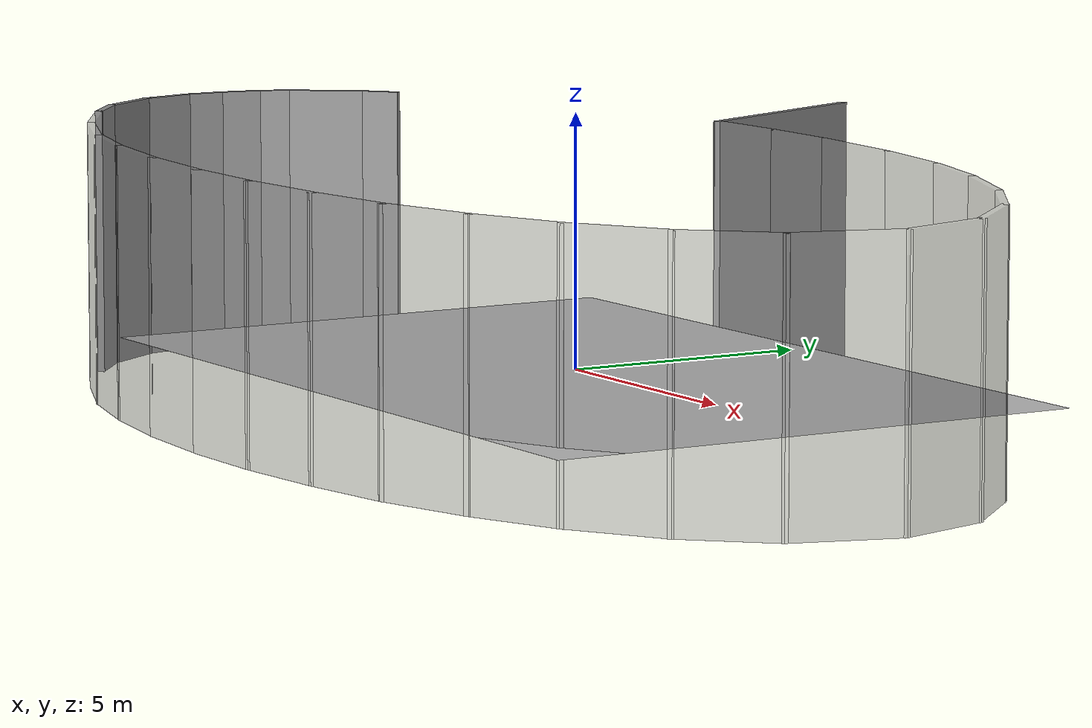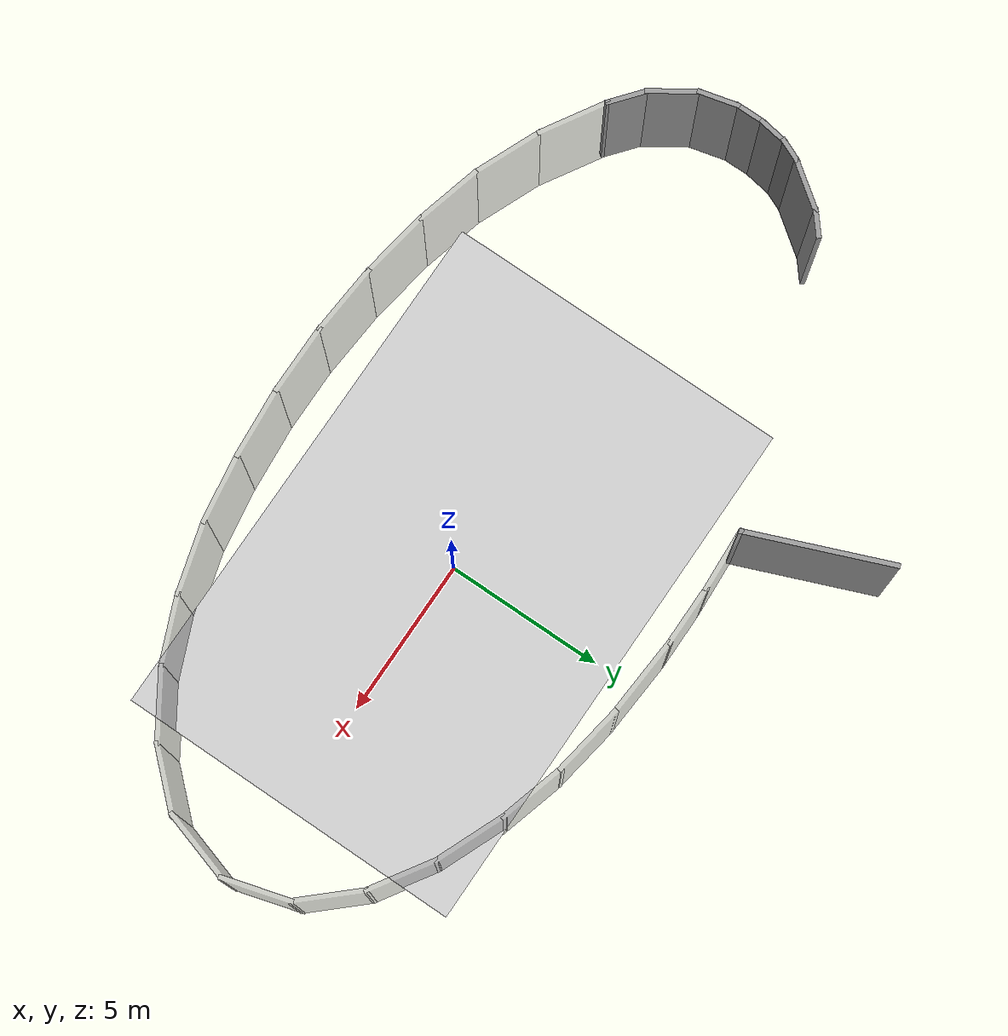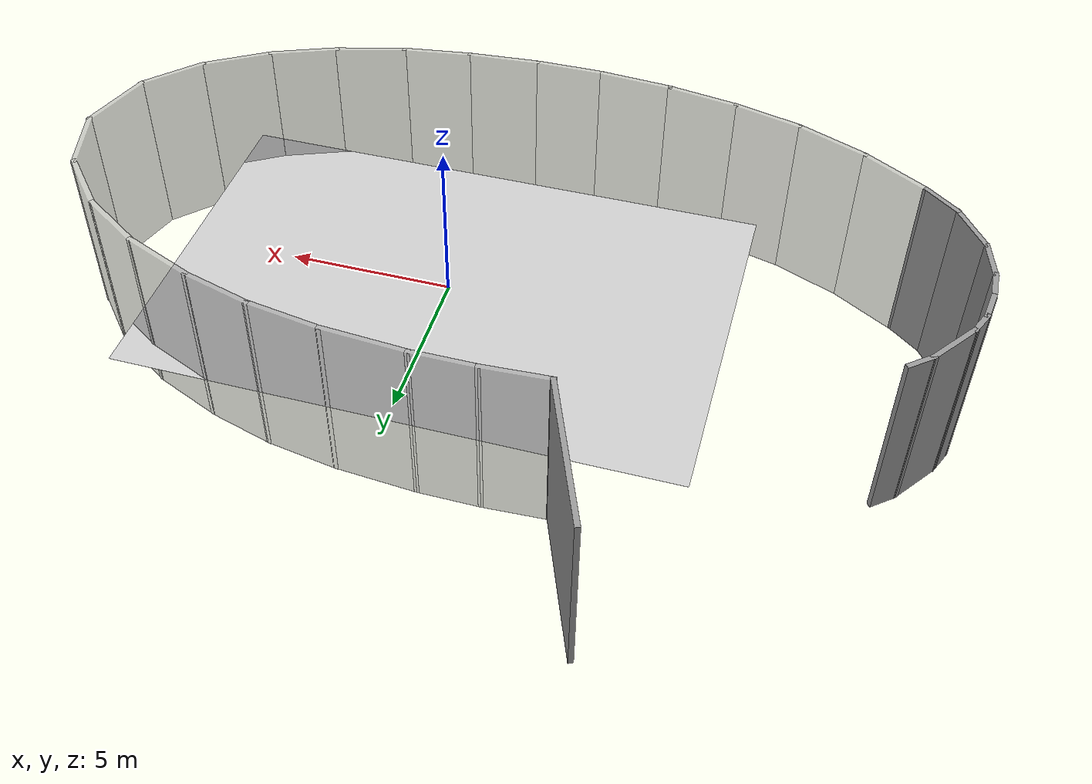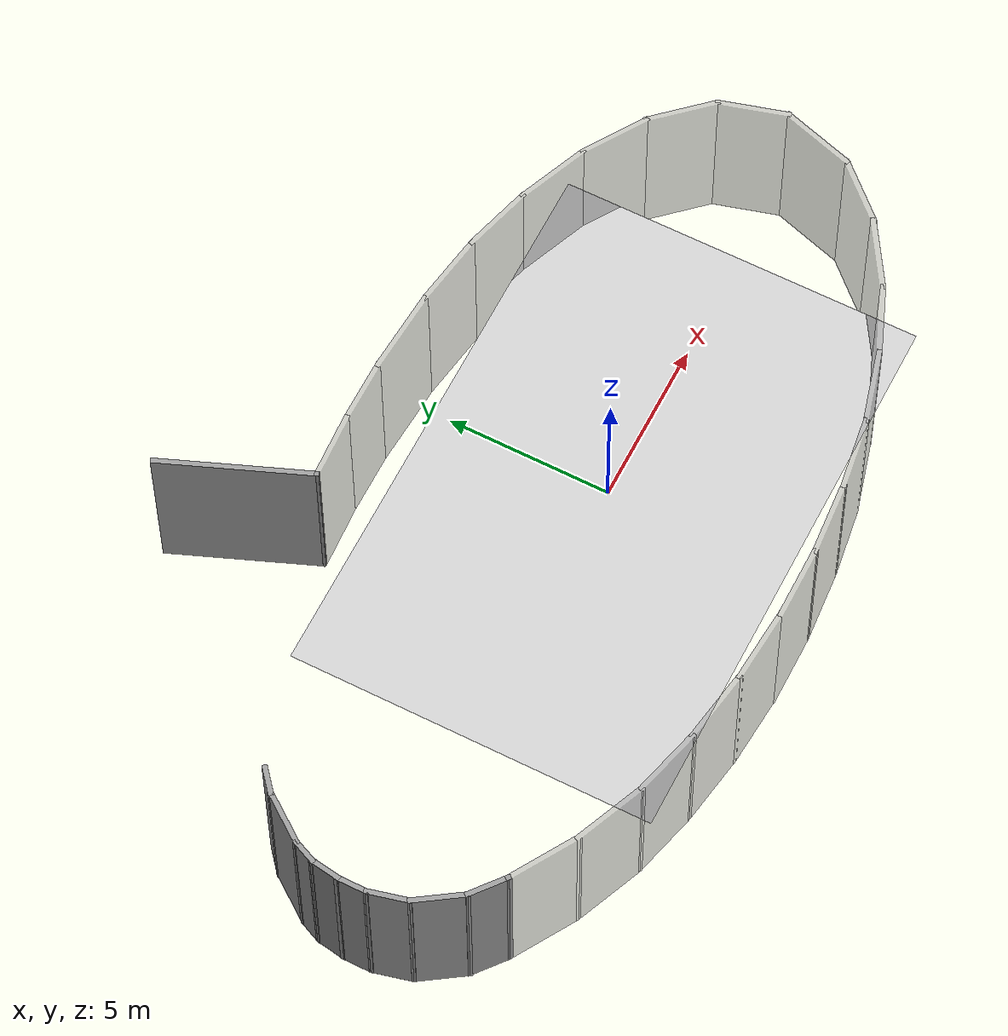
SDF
<?xml version='1.0'?>
<sdf version='1.7'>

  <model name='lobby_window'>
    <pose>-2 6.1 0 0 -0 0</pose>

    <!-- 트랙 -->
    <link name="race_track">
      <visual name="ground_visual">
        <pose>2 -6.1 0 0 0 0</pose>
        <cast_shadows>false</cast_shadows>
        <geometry>
          <plane>
            <normal>0 0 1</normal>
            <size>17 11.118</size>
          </plane>
        </geometry>
        <material>
          <script>
            <uri>model://lobby_window/materials/scripts</uri>
            <uri>model://lobby_window/materials/textures</uri>
            <name>track</name>
          </script>
        </material>
      </visual>
      <collision name="ground_collision">
        <pose>2 -6.1 0 0 0 0</pose>
        <geometry>
          <plane>
            <normal>0 0 1</normal>
            <size>17 11.118</size>
          </plane>
        </geometry>
      </collision>
    </link>

    <!-- 오른쪽 벽 -->
    <link name='Wall_0'>
      <collision name='Wall_32_Collision'>
        <geometry>
          <box>
            <size>4.62832 0.15 5.5</size>
          </box>
        </geometry>
        <pose>0 0 1.25 0 -0 0</pose>
      </collision>
      <visual name='Wall_0_Visual'>
        <pose>0 0 1.25 0 -0 0</pose>
        <geometry>
          <box>
            <size>4.62832 0.15 5.5</size>
          </box>
        </geometry>
        <material>
          <script>
            <uri>file://media/materials/scripts/gazebo.material</uri>
            <name>Gazebo/Grey</name>
          </script>
          <ambient>1 1 1 1</ambient>
        </material>
        <meta>
          <layer>0</layer>
        </meta>
      </visual>
      <pose>-3.7809 2.45349 0 0 -0 1.951</pose>
    </link>

    <!-- 왼쪽 벽 -->
    <link name='Wall_1'>
      <collision name='Wall_1_Collision'>
        <geometry>
          <box>
            <size>1.3194 0.15 5.5</size>
          </box>
        </geometry>
        <pose>0 0 1.25 0 -0 0</pose>
      </collision>
      <visual name='Wall_1_Visual'>
        <pose>0 0 1.25 0 -0 0</pose>
        <geometry>
          <box>
            <size>1.3194 0.15 5.5</size>
          </box>
        </geometry>
        <material>
          <script>
            <uri>file://media/materials/scripts/gazebo.material</uri>
            <name>Gazebo/Grey</name>
          </script>
          <ambient>1 1 1 1</ambient>
        </material>
        <meta>
          <layer>0</layer>
        </meta>
      </visual>
      <pose>-11.6371 -9.35904 0 0 -0 2.45859</pose>
    </link>
    <link name='Wall_2'>
      <collision name='Wall_2_Collision'>
        <geometry>
          <box>
            <size>1.65804 0.15 5.5</size>
          </box>
        </geometry>
        <pose>0 0 1.25 0 -0 0</pose>
      </collision>
      <visual name='Wall_2_Visual'>
        <pose>0 0 1.25 0 -0 0</pose>
        <geometry>
          <box>
            <size>1.65804 0.15 5.5</size>
          </box>
        </geometry>
        <material>
          <script>
            <uri>file://media/materials/scripts/gazebo.material</uri>
            <name>Gazebo/Grey</name>
          </script>
          <ambient>1 1 1 1</ambient>
        </material>
        <meta>
          <layer>0</layer>
        </meta>
      </visual>
      <pose>-12.5126 -8.36179 0 0 -0 2.15676</pose>
    </link>
    <link name='Wall_3'>
      <collision name='Wall_3_Collision'>
        <geometry>
          <box>
            <size>1.31617 0.15 5.5</size>
          </box>
        </geometry>
        <pose>0 0 1.25 0 -0 0</pose>
      </collision>
      <visual name='Wall_3_Visual'>
        <pose>0 0 1.25 0 -0 0</pose>
        <geometry>
          <box>
            <size>1.31617 0.15 5.5</size>
          </box>
        </geometry>
        <material>
          <script>
            <uri>file://media/materials/scripts/gazebo.material</uri>
            <name>Gazebo/Grey</name>
          </script>
          <ambient>1 1 1 1</ambient>
        </material>
        <meta>
          <layer>0</layer>
        </meta>
      </visual>
      <pose>-13.0744 -7.16253 0 0 -0 1.81303</pose>
    </link>
    <link name='Wall_4'>
      <collision name='Wall_4_Collision'>
        <geometry>
          <box>
            <size>1.00994 0.15 5.5</size>
          </box>
        </geometry>
        <pose>0 0 1.25 0 -0 0</pose>
      </collision>
      <visual name='Wall_4_Visual'>
        <pose>0 0 1.25 0 -0 0</pose>
        <geometry>
          <box>
            <size>1.00994 0.15 5.5</size>
          </box>
        </geometry>
        <material>
          <script>
            <uri>file://media/materials/scripts/gazebo.material</uri>
            <name>Gazebo/Grey</name>
          </script>
          <ambient>1 1 1 1</ambient>
        </material>
        <meta>
          <layer>0</layer>
        </meta>
      </visual>
      <pose>-13.2192 -6.16649 0 0 -0 1.5708</pose>
    </link>
    <link name='Wall_5'>
      <collision name='Wall_5_Collision'>
        <geometry>
          <box>
            <size>0.975383 0.15 5.5</size>
          </box>
        </geometry>
        <pose>0 0 1.25 0 -0 0</pose>
      </collision>
      <visual name='Wall_5_Visual'>
        <pose>0 0 1.25 0 -0 0</pose>
        <geometry>
          <box>
            <size>0.975383 0.15 5.5</size>
          </box>
        </geometry>
        <material>
          <script>
            <uri>file://media/materials/scripts/gazebo.material</uri>
            <name>Gazebo/Grey</name>
          </script>
          <ambient>1 1 1 1</ambient>
        </material>
        <meta>
          <layer>0</layer>
        </meta>
      </visual>
      <pose>-13.1496 -5.32892 0 0 -0 1.41354</pose>
    </link>
    <link name='Wall_6'>
      <collision name='Wall_6_Collision'>
        <geometry>
          <box>
            <size>0.830214 0.15 5.5</size>
          </box>
        </geometry>
        <pose>0 0 1.25 0 -0 0</pose>
      </collision>
      <visual name='Wall_6_Visual'>
        <pose>0 0 1.25 0 -0 0</pose>
        <geometry>
          <box>
            <size>0.830214 0.15 5.5</size>
          </box>
        </geometry>
        <material>
          <script>
            <uri>file://media/materials/scripts/gazebo.material</uri>
            <name>Gazebo/Grey</name>
          </script>
          <ambient>1 1 1 1</ambient>
        </material>
        <meta>
          <layer>0</layer>
        </meta>
      </visual>
      <pose>-12.952 -4.61044 0 0 -0 1.15324</pose>
    </link>
    <link name='Wall_7'>
      <collision name='Wall_7_Collision'>
        <geometry>
          <box>
            <size>1.72243 0.15 5.5</size>
          </box>
        </geometry>
        <pose>0 0 1.25 0 -0 0</pose>
      </collision>
      <visual name='Wall_7_Visual'>
        <pose>0 0 1.25 0 -0 0</pose>
        <geometry>
          <box>
            <size>1.72243 0.15 5.5</size>
          </box>
        </geometry>
        <material>
          <script>
            <uri>file://media/materials/scripts/gazebo.material</uri>
            <name>Gazebo/Grey</name>
          </script>
          <ambient>1 1 1 1</ambient>
        </material>
        <meta>
          <layer>0</layer>
        </meta>
      </visual>
      <pose>-12.3427 -3.66663 0 0 -0 0.935721</pose>
    </link>
    <link name='Wall_8'>
      <collision name='Wall_8_Collision'>
        <geometry>
          <box>
            <size>0.908028 0.15 5.5</size>
          </box>
        </geometry>
        <pose>0 0 1.25 0 -0 0</pose>
      </collision>
      <visual name='Wall_8_Visual'>
        <pose>0 0 1.25 0 -0 0</pose>
        <geometry>
          <box>
            <size>0.908028 0.15 5.5</size>
          </box>
        </geometry>
        <material>
          <script>
            <uri>file://media/materials/scripts/gazebo.material</uri>
            <name>Gazebo/Grey</name>
          </script>
          <ambient>1 1 1 1</ambient>
        </material>
        <meta>
          <layer>0</layer>
        </meta>
      </visual>
      <pose>-11.5907 -2.79036 0 0 -0 0.697166</pose>
    </link>

    <!-- 유리창 -->
    <link name='Window_0'>
      <collision name='Window_0_Collision'>
        <geometry>
          <box>
            <size>2.06402 0.15 5.5</size>
          </box>
        </geometry>
        <pose>0 0 1.25 0 -0 0</pose>
      </collision>
      <visual name='Window_0_Visual'>
        <pose>0 0 1.25 0 -0 0</pose>
        <geometry>
          <box>
            <size>2.06402 0.15 5.5</size>
          </box>
        </geometry>
        <material>
          <script>
            <uri>file://media/materials/scripts/gazebo.material</uri>
            <name>Gazebo/GreyTransparent</name>
          </script>
          <ambient>1 1 1 1</ambient>
        </material>
        <meta>
          <layer>0</layer>
        </meta>
      </visual>
      <pose>-1.99425 0.407424 0 0 -0 0.052885</pose>
    </link>
    <link name='Window_1'>
      <collision name='Window_1_Collision'>
        <geometry>
          <box>
            <size>2 0.15 5.5</size>
          </box>
        </geometry>
        <pose>0 0 1.25 0 -0 0</pose>
      </collision>
      <visual name='Window_1_Visual'>
        <pose>0 0 1.25 0 -0 0</pose>
        <geometry>
          <box>
            <size>2 0.15 5.5</size>
          </box>
        </geometry>
        <material>
          <script>
            <uri>file://media/materials/scripts/gazebo.material</uri>
            <name>Gazebo/GreyTransparent</name>
          </script>
          <ambient>1 1 1 1</ambient>
        </material>
        <meta>
          <layer>0</layer>
        </meta>
      </visual>
      <pose>-0.113579 0.458012 0 0 -0 0</pose>
    </link>
    <link name='Window_10'>
      <collision name='Window_10_Collision'>
        <geometry>
          <box>
            <size>2.17049 0.15 5.5</size>
          </box>
        </geometry>
        <pose>0 0 1.25 0 -0 0</pose>
      </collision>
      <visual name='Window_10_Visual'>
        <pose>0 0 1.25 0 -0 0</pose>
        <geometry>
          <box>
            <size>2.17049 0.15 5.5</size>
          </box>
        </geometry>
        <material>
          <script>
            <uri>file://media/materials/scripts/gazebo.material</uri>
            <name>Gazebo/GreyTransparent</name>
          </script>
          <ambient>1 1 1 1</ambient>
        </material>
        <meta>
          <layer>0</layer>
        </meta>
      </visual>
      <pose>11.8767 -8.98439 0 0 -0 -2.31965</pose>
    </link>
    <link name='Window_11'>
      <collision name='Window_11_Collision'>
        <geometry>
          <box>
            <size>2.3083 0.15 5.5</size>
          </box>
        </geometry>
        <pose>0 0 1.25 0 -0 0</pose>
      </collision>
      <visual name='Window_11_Visual'>
        <pose>0 0 1.25 0 -0 0</pose>
        <geometry>
          <box>
            <size>2.3083 0.15 5.5</size>
          </box>
        </geometry>
        <material>
          <script>
            <uri>file://media/materials/scripts/gazebo.material</uri>
            <name>Gazebo/GreyTransparent</name>
          </script>
          <ambient>1 1 1 1</ambient>
        </material>
        <meta>
          <layer>0</layer>
        </meta>
      </visual>
      <pose>10.2672 -10.3016 0 0 -0 -2.57724</pose>
    </link>
    <link name='Window_12'>
      <collision name='Window_12_Collision'>
        <geometry>
          <box>
            <size>2.23146 0.15 5.5</size>
          </box>
        </geometry>
        <pose>0 0 1.25 0 -0 0</pose>
      </collision>
      <visual name='Window_12_Visual'>
        <pose>0 0 1.25 0 -0 0</pose>
        <geometry>
          <box>
            <size>2.23146 0.15 5.5</size>
          </box>
        </geometry>
        <material>
          <script>
            <uri>file://media/materials/scripts/gazebo.material</uri>
            <name>Gazebo/GreyTransparent</name>
          </script>
          <ambient>1 1 1 1</ambient>
        </material>
        <meta>
          <layer>0</layer>
        </meta>
      </visual>
      <pose>8.39884 -11.277 0 0 -0 -2.74895</pose>
    </link>
    <link name='Window_13'>
      <collision name='Window_13_Collision'>
        <geometry>
          <box>
            <size>2.32692 0.15 5.5</size>
          </box>
        </geometry>
        <pose>0 0 1.25 0 -0 0</pose>
      </collision>
      <visual name='Window_13_Visual'>
        <pose>0 0 1.25 0 -0 0</pose>
        <geometry>
          <box>
            <size>2.32692 0.15 5.5</size>
          </box>
        </geometry>
        <material>
          <script>
            <uri>file://media/materials/scripts/gazebo.material</uri>
            <name>Gazebo/GreyTransparent</name>
          </script>
          <ambient>1 1 1 1</ambient>
        </material>
        <meta>
          <layer>0</layer>
        </meta>
      </visual>
      <pose>6.38936 -11.9644 0 0 -0 -2.86793</pose>
    </link>
    <link name='Window_14'>
      <collision name='Window_14_Collision'>
        <geometry>
          <box>
            <size>2.26097 0.15 5.5</size>
          </box>
        </geometry>
        <pose>0 0 1.25 0 -0 0</pose>
      </collision>
      <visual name='Window_14_Visual'>
        <pose>0 0 1.25 0 -0 0</pose>
        <geometry>
          <box>
            <size>2.26097 0.15 5.5</size>
          </box>
        </geometry>
        <material>
          <script>
            <uri>file://media/materials/scripts/gazebo.material</uri>
            <name>Gazebo/GreyTransparent</name>
          </script>
          <ambient>1 1 1 1</ambient>
        </material>
        <meta>
          <layer>0</layer>
        </meta>
      </visual>
      <pose>4.29735 -12.4185 0 0 -0 -2.99428</pose>
    </link>
    <link name='Window_15'>
      <collision name='Window_15_Collision'>
        <geometry>
          <box>
            <size>2.32657 0.15 5.5</size>
          </box>
        </geometry>
        <pose>0 0 1.25 0 -0 0</pose>
      </collision>
      <visual name='Window_15_Visual'>
        <pose>0 0 1.25 0 -0 0</pose>
        <geometry>
          <box>
            <size>2.32657 0.15 5.5</size>
          </box>
        </geometry>
        <material>
          <script>
            <uri>file://media/materials/scripts/gazebo.material</uri>
            <name>Gazebo/GreyTransparent</name>
          </script>
          <ambient>1 1 1 1</ambient>
        </material>
        <meta>
          <layer>0</layer>
        </meta>
      </visual>
      <pose>2.17346 -12.6604 0 0 -0 -3.06156</pose>
    </link>
    <link name='Window_16'>
      <collision name='Window_16_Collision'>
        <geometry>
          <box>
            <size>2.28125 0.15 5.5</size>
          </box>
        </geometry>
        <pose>0 0 1.25 0 -0 0</pose>
      </collision>
      <visual name='Window_16_Visual'>
        <pose>0 0 1.25 0 -0 0</pose>
        <geometry>
          <box>
            <size>2.28125 0.15 5.5</size>
          </box>
        </geometry>
        <material>
          <script>
            <uri>file://media/materials/scripts/gazebo.material</uri>
            <name>Gazebo/GreyTransparent</name>
          </script>
          <ambient>1 1 1 1</ambient>
        </material>
        <meta>
          <layer>0</layer>
        </meta>
      </visual>
      <pose>0.028013 -12.7499 0 0 -0 -3.13926</pose>
    </link>
    <link name='Window_17'>
      <collision name='Window_17_Collision'>
        <geometry>
          <box>
            <size>2.32618 0.15 5.5</size>
          </box>
        </geometry>
        <pose>0 0 1.25 0 -0 0</pose>
      </collision>
      <visual name='Window_17_Visual'>
        <pose>0 0 1.25 0 -0 0</pose>
        <geometry>
          <box>
            <size>2.32618 0.15 5.5</size>
          </box>
        </geometry>
        <material>
          <script>
            <uri>file://media/materials/scripts/gazebo.material</uri>
            <name>Gazebo/GreyTransparent</name>
          </script>
          <ambient>1 1 1 1</ambient>
        </material>
        <meta>
          <layer>0</layer>
        </meta>
      </visual>
      <pose>-2.12241 -12.6579 0 0 -0 3.06384</pose>
    </link>
    <link name='Window_18'>
      <collision name='Window_18_Collision'>
        <geometry>
          <box>
            <size>2.29169 0.15 5.5</size>
          </box>
        </geometry>
        <pose>0 0 1.25 0 -0 0</pose>
      </collision>
      <visual name='Window_18_Visual'>
        <pose>0 0 1.25 0 -0 0</pose>
        <geometry>
          <box>
            <size>2.29169 0.15 5.5</size>
          </box>
        </geometry>
        <material>
          <script>
            <uri>file://media/materials/scripts/gazebo.material</uri>
            <name>Gazebo/GreyTransparent</name>
          </script>
          <ambient>1 1 1 1</ambient>
        </material>
        <meta>
          <layer>0</layer>
        </meta>
      </visual>
      <pose>-4.2637 -12.3936 0 0 -0 2.97761</pose>
    </link>
    <link name='Window_19'>
      <collision name='Window_19_Collision'>
        <geometry>
          <box>
            <size>2.20038 0.15 5.5</size>
          </box>
        </geometry>
        <pose>0 0 1.25 0 -0 0</pose>
      </collision>
      <visual name='Window_19_Visual'>
        <pose>0 0 1.25 0 -0 0</pose>
        <geometry>
          <box>
            <size>2.20038 0.15 5.5</size>
          </box>
        </geometry>
        <material>
          <script>
            <uri>file://media/materials/scripts/gazebo.material</uri>
            <name>Gazebo/GreyTransparent</name>
          </script>
          <ambient>1 1 1 1</ambient>
        </material>
        <meta>
          <layer>0</layer>
        </meta>
      </visual>
      <pose>-6.317 -11.9595 0 0 -0 2.88586</pose>
    </link>
    <link name='Window_2'>
      <collision name='Window_2_Collision'>
        <geometry>
          <box>
            <size>2.60708 0.15 5.5</size>
          </box>
        </geometry>
        <pose>0 0 1.25 0 -0 0</pose>
      </collision>
      <visual name='Window_2_Visual'>
        <pose>0 0 1.25 0 -0 0</pose>
        <geometry>
          <box>
            <size>2.60708 0.15 5.5</size>
          </box>
        </geometry>
        <material>
          <script>
            <uri>file://media/materials/scripts/gazebo.material</uri>
            <name>Gazebo/GreyTransparent</name>
          </script>
          <ambient>1 1 1 1</ambient>
        </material>
        <meta>
          <layer>0</layer>
        </meta>
      </visual>
      <pose>2.03688 0.371005 0 0 -0 -0.07088</pose>
    </link>
    <link name='Window_20'>
      <collision name='Window_20_Collision'>
        <geometry>
          <box>
            <size>2.35195 0.15 5.5</size>
          </box>
        </geometry>
        <pose>0 0 1.25 0 -0 0</pose>
      </collision>
      <visual name='Window_20_Visual'>
        <pose>0 0 1.25 0 -0 0</pose>
        <geometry>
          <box>
            <size>2.35195 0.15 5.5</size>
          </box>
        </geometry>
        <material>
          <script>
            <uri>file://media/materials/scripts/gazebo.material</uri>
            <name>Gazebo/GreyTransparent</name>
          </script>
          <ambient>1 1 1 1</ambient>
        </material>
        <meta>
          <layer>0</layer>
        </meta>
      </visual>
      <pose>-8.32804 -11.2718 0 0 -0 2.74196</pose>
    </link>
    <link name='Window_21'>
      <collision name='Window_21_Collision'>
        <geometry>
          <box>
            <size>2.3138 0.15 5.5</size>
          </box>
        </geometry>
        <pose>0 0 1.25 0 -0 0</pose>
      </collision>
      <visual name='Window_21_Visual'>
        <pose>0 0 1.25 0 -0 0</pose>
        <geometry>
          <box>
            <size>2.3138 0.15 5.5</size>
          </box>
        </geometry>
        <material>
          <script>
            <uri>file://media/materials/scripts/gazebo.material</uri>
            <name>Gazebo/GreyTransparent</name>
          </script>
          <ambient>1 1 1 1</ambient>
        </material>
        <meta>
          <layer>0</layer>
        </meta>
      </visual>
      <pose>-10.2629 -10.2833 0 0 -0 2.59737</pose>
    </link>
    <link name='Window_3'>
      <collision name='Window_3_Collision'>
        <geometry>
          <box>
            <size>2.35628 0.15 5.5</size>
          </box>
        </geometry>
        <pose>0 0 1.25 0 -0 0</pose>
      </collision>
      <visual name='Window_3_Visual'>
        <pose>0 0 1.25 0 -0 0</pose>
        <geometry>
          <box>
            <size>2.35628 0.15 5.5</size>
          </box>
        </geometry>
        <material>
          <script>
            <uri>file://media/materials/scripts/gazebo.material</uri>
            <name>Gazebo/GreyTransparent</name>
          </script>
          <ambient>1 1 1 1</ambient>
        </material>
        <meta>
          <layer>0</layer>
        </meta>
      </visual>
      <pose>4.35113 0.111675 0 0 -0 -0.16142</pose>
    </link>
    <link name='Window_4'>
      <collision name='Window_4_Collision'>
        <geometry>
          <box>
            <size>2.22786 0.15 5.5</size>
          </box>
        </geometry>
        <pose>0 0 1.25 0 -0 0</pose>
      </collision>
      <visual name='Window_4_Visual'>
        <pose>0 0 1.25 0 -0 0</pose>
        <geometry>
          <box>
            <size>2.22786 0.15 5.5</size>
          </box>
        </geometry>
        <material>
          <script>
            <uri>file://media/materials/scripts/gazebo.material</uri>
            <name>Gazebo/GreyTransparent</name>
          </script>
          <ambient>1 1 1 1</ambient>
        </material>
        <meta>
          <layer>0</layer>
        </meta>
      </visual>
      <pose>6.43427 -0.344839 0 0 -0 -0.277072</pose>
    </link>
    <link name='Window_5'>
      <collision name='Window_5_Collision'>
        <geometry>
          <box>
            <size>2.37296 0.15 5.5</size>
          </box>
        </geometry>
        <pose>0 0 1.25 0 -0 0</pose>
      </collision>
      <visual name='Window_5_Visual'>
        <pose>0 0 1.25 0 -0 0</pose>
        <geometry>
          <box>
            <size>2.37296 0.15 5.5</size>
          </box>
        </geometry>
        <material>
          <script>
            <uri>file://media/materials/scripts/gazebo.material</uri>
            <name>Gazebo/GreyTransparent</name>
          </script>
          <ambient>1 1 1 1</ambient>
        </material>
        <meta>
          <layer>0</layer>
        </meta>
      </visual>
      <pose>8.46022 -1.05988 0 0 -0 -0.393224</pose>
    </link>
    <link name='Window_6'>
      <collision name='Window_6_Collision'>
        <geometry>
          <box>
            <size>2.2267 0.15 5.5</size>
          </box>
        </geometry>
        <pose>0 0 1.25 0 -0 0</pose>
      </collision>
      <visual name='Window_6_Visual'>
        <pose>0 0 1.25 0 -0 0</pose>
        <geometry>
          <box>
            <size>2.2267 0.15 5.5</size>
          </box>
        </geometry>
        <material>
          <script>
            <uri>file://media/materials/scripts/gazebo.material</uri>
            <name>Gazebo/GreyTransparent</name>
          </script>
          <ambient>1 1 1 1</ambient>
        </material>
        <meta>
          <layer>0</layer>
        </meta>
      </visual>
      <pose>10.3614 -2.05054 0 0 -0 -0.5694</pose>
    </link>
    <link name='Window_7'>
      <collision name='Window_7_Collision'>
        <geometry>
          <box>
            <size>2.24831 0.15 5.5</size>
          </box>
        </geometry>
        <pose>0 0 1.25 0 -0 0</pose>
      </collision>
      <visual name='Window_7_Visual'>
        <pose>0 0 1.25 0 -0 0</pose>
        <geometry>
          <box>
            <size>2.24831 0.15 5.5</size>
          </box>
        </geometry>
        <material>
          <script>
            <uri>file://media/materials/scripts/gazebo.material</uri>
            <name>Gazebo/GreyTransparent</name>
          </script>
          <ambient>1 1 1 1</ambient>
        </material>
        <meta>
          <layer>0</layer>
        </meta>
      </visual>
      <pose>11.945 -3.37905 0 0 -0 -0.828961</pose>
    </link>
    <link name='Window_8'>
      <collision name='Window_8_Collision'>
        <geometry>
          <box>
            <size>2.20123 0.15 5.5</size>
          </box>
        </geometry>
        <pose>0 0 1.25 0 -0 0</pose>
      </collision>
      <visual name='Window_8_Visual'>
        <pose>0 0 1.25 0 -0 0</pose>
        <geometry>
          <box>
            <size>2.20123 0.15 5.5</size>
          </box>
        </geometry>
        <material>
          <script>
            <uri>file://media/materials/scripts/gazebo.material</uri>
            <name>Gazebo/GreyTransparent</name>
          </script>
          <ambient>1 1 1 1</ambient>
        </material>
        <meta>
          <layer>0</layer>
        </meta>
      </visual>
      <pose>12.9332 -5.13463 0 0 -0 -1.29507</pose>
    </link>
    <link name='Window_9'>
      <collision name='Window_9_Collision'>
        <geometry>
          <box>
            <size>2.36958 0.15 5.5</size>
          </box>
        </geometry>
        <pose>0 0 1.25 0 -0 0</pose>
      </collision>
      <visual name='Window_9_Visual'>
        <pose>0 0 1.25 0 -0 0</pose>
        <geometry>
          <box>
            <size>2.36958 0.15 5.5</size>
          </box>
        </geometry>
        <material>
          <script>
            <uri>file://media/materials/scripts/gazebo.material</uri>
            <name>Gazebo/GreyTransparent</name>
          </script>
          <ambient>1 1 1 1</ambient>
        </material>
        <meta>
          <layer>0</layer>
        </meta>
      </visual>
      <pose>12.8835 -7.18296 0 0 -0 -1.86702</pose>
    </link>

    <static>1</static>
  </model>

</sdf>
